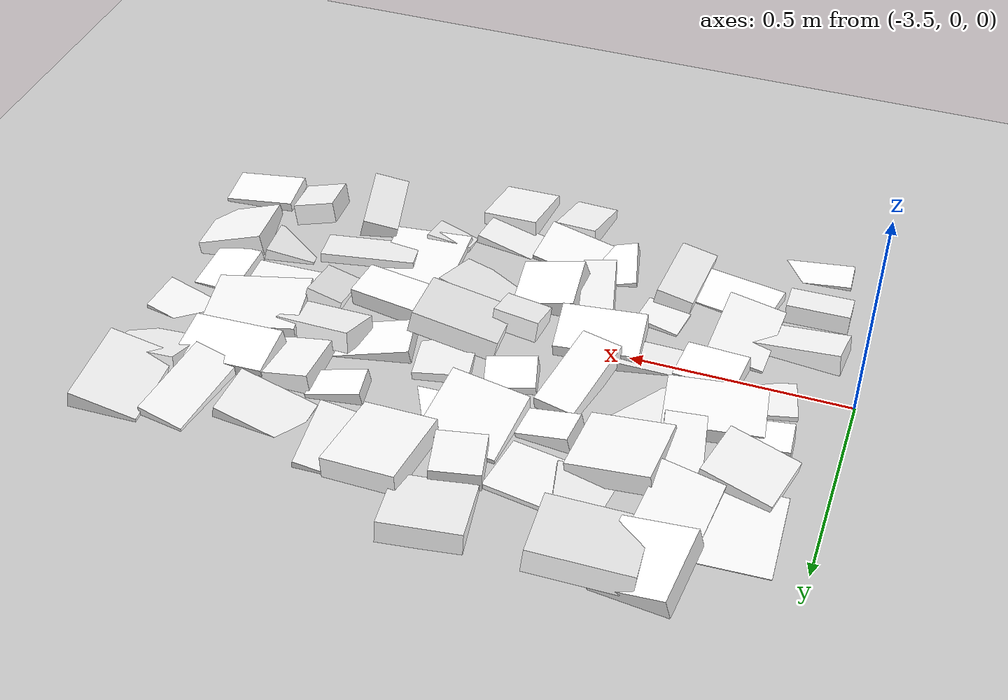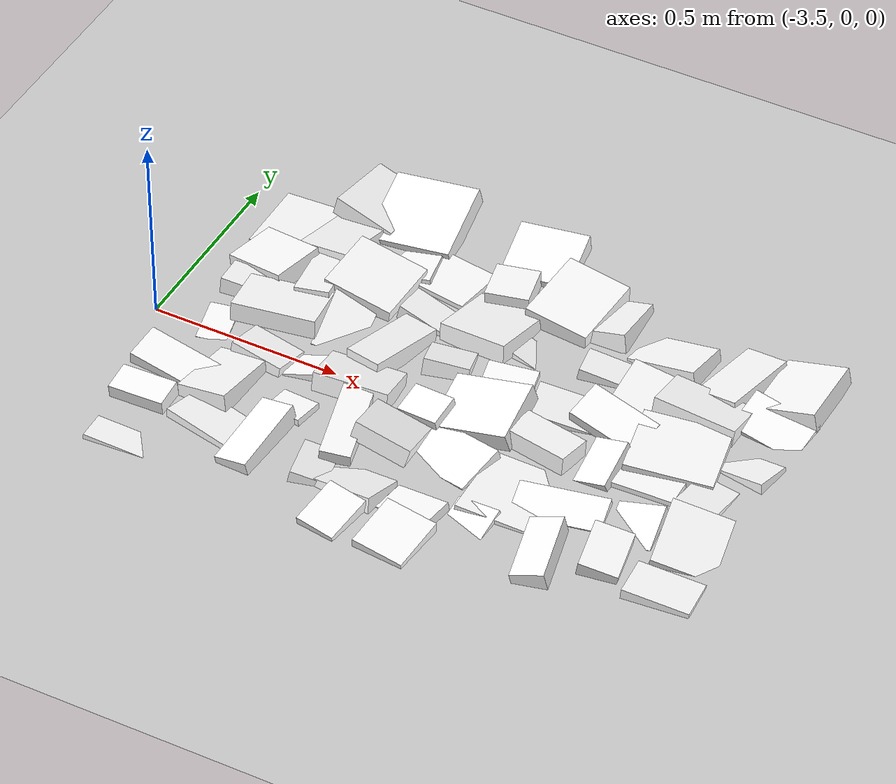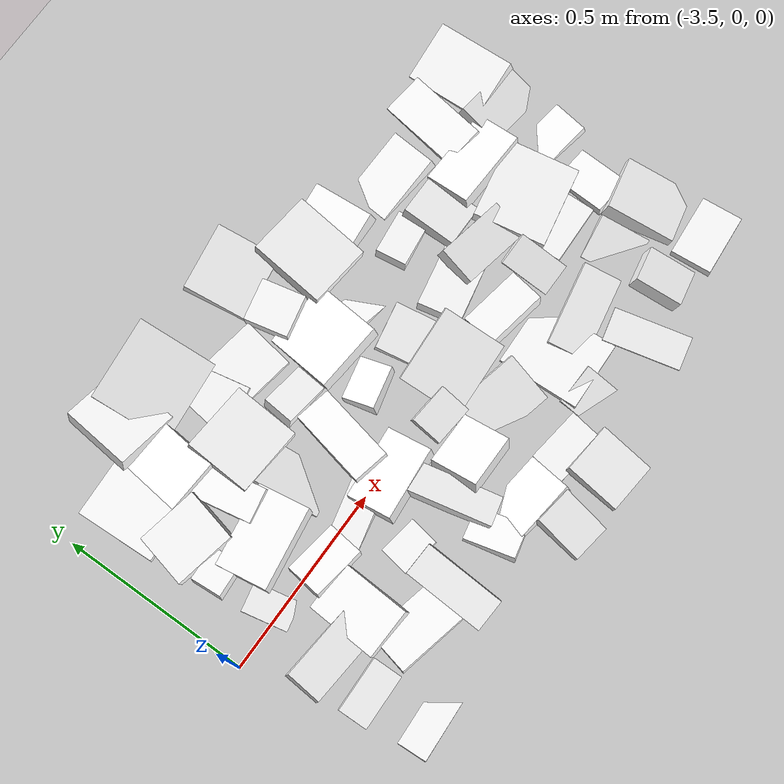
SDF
<sdf version="1.7">
 <world name="default">
  <include><uri>model://sun</uri></include>
  <include><uri>model://ground_plane</uri></include>
  <model name="static_environment">
   <static>true</static>
   <link name="region_125">
    <pose>-2.7450805066014703 0.5970030428289608 0.007936961248547307 -0.17419196022391947 0.016974017752795112 3.2902578594799046</pose>
    <collision name="region_125_collision">
     <geometry><box><size>0.1787872380026846 0.16993174513375917 0.05</size></box></geometry>
     <surface><friction><ode><mu>1.0</mu><mu2>1.0</mu2></ode></friction></surface>
    </collision>
    <visual name="region_125_visual">
     <geometry><box><size>0.1787872380026846 0.16993174513375917 0.05</size></box></geometry>
     <material><ambient>1.0 1.0 1.0 1.0</ambient><diffuse>1.0 1.0 1.0 1.0</diffuse></material>
    </visual>
   </link>
   <link name="region_127">
    <pose>-3.074279364121639 0.582110382729103 0.021026293206696932 -0.2405612050189324 0.07493299263441427 3.2245069481845783</pose>
    <collision name="region_127_collision">
     <geometry><box><size>0.22155990457814648 0.2110941735947492 0.05</size></box></geometry>
     <surface><friction><ode><mu>1.0</mu><mu2>1.0</mu2></ode></friction></surface>
    </collision>
    <visual name="region_127_visual">
     <geometry><box><size>0.22155990457814648 0.2110941735947492 0.05</size></box></geometry>
     <material><ambient>1.0 1.0 1.0 1.0</ambient><diffuse>1.0 1.0 1.0 1.0</diffuse></material>
    </visual>
   </link>
   <link name="region_128">
    <pose>-3.1947381954442773 0.5901361474293554 0.011953698729334043 0.09498438012934918 -0.2211343357453654 3.0196516848383186</pose>
    <collision name="region_128_collision">
     <geometry><box><size>0.16613577178932437 0.18793919129499198 0.05</size></box></geometry>
     <surface><friction><ode><mu>1.0</mu><mu2>1.0</mu2></ode></friction></surface>
    </collision>
    <visual name="region_128_visual">
     <geometry><box><size>0.16613577178932437 0.18793919129499198 0.05</size></box></geometry>
     <material><ambient>1.0 1.0 1.0 1.0</ambient><diffuse>1.0 1.0 1.0 1.0</diffuse></material>
    </visual>
   </link>
   <link name="region_140">
    <pose>-1.977554527062493 0.44654129015868715 0.008197541328173172 0.0782525190440791 0.2219908501742885 3.182647477624625</pose>
    <collision name="region_140_collision">
     <geometry><box><size>0.15912056584782244 0.20657173481870045 0.05</size></box></geometry>
     <surface><friction><ode><mu>1.0</mu><mu2>1.0</mu2></ode></friction></surface>
    </collision>
    <visual name="region_140_visual">
     <geometry><box><size>0.15912056584782244 0.20657173481870045 0.05</size></box></geometry>
     <material><ambient>1.0 1.0 1.0 1.0</ambient><diffuse>1.0 1.0 1.0 1.0</diffuse></material>
    </visual>
   </link>
   <link name="region_141">
    <pose>-2.126756254897216 0.4243954894508986 4.9218588760752136e-05 0.09862361094934724 0.1410521175741823 2.9893607152386563</pose>
    <collision name="region_141_collision">
     <geometry><box><size>0.11128267354355184 0.21727386595157264 0.05</size></box></geometry>
     <surface><friction><ode><mu>1.0</mu><mu2>1.0</mu2></ode></friction></surface>
    </collision>
    <visual name="region_141_visual">
     <geometry><box><size>0.11128267354355184 0.21727386595157264 0.05</size></box></geometry>
     <material><ambient>1.0 1.0 1.0 1.0</ambient><diffuse>1.0 1.0 1.0 1.0</diffuse></material>
    </visual>
   </link>
   <link name="region_142">
    <pose>-2.3066923933066175 0.42473631597748673 -0.0071861196831135565 0.1195137725190904 0.2167940511240608 3.0678516066331656</pose>
    <collision name="region_142_collision">
     <geometry><box><size>0.1873565274673096 0.12182042776783417 0.05</size></box></geometry>
     <surface><friction><ode><mu>1.0</mu><mu2>1.0</mu2></ode></friction></surface>
    </collision>
    <visual name="region_142_visual">
     <geometry><box><size>0.1873565274673096 0.12182042776783417 0.05</size></box></geometry>
     <material><ambient>1.0 1.0 1.0 1.0</ambient><diffuse>1.0 1.0 1.0 1.0</diffuse></material>
    </visual>
   </link>
   <link name="region_143">
    <pose>-2.4797391435352867 0.47445375798717376 -0.0005016795825624094 0.18506785968185613 0.19300738297912629 3.2047756692687903</pose>
    <collision name="region_143_collision">
     <geometry><box><size>0.10750885270128696 0.16651616020808907 0.05</size></box></geometry>
     <surface><friction><ode><mu>1.0</mu><mu2>1.0</mu2></ode></friction></surface>
    </collision>
    <visual name="region_143_visual">
     <geometry><box><size>0.10750885270128696 0.16651616020808907 0.05</size></box></geometry>
     <material><ambient>1.0 1.0 1.0 1.0</ambient><diffuse>1.0 1.0 1.0 1.0</diffuse></material>
    </visual>
   </link>
   <link name="region_144">
    <pose>-2.5923904133879905 0.4708563151062957 0.0246079806252648 -0.07311969972214782 -0.0875729615630787 3.056457538661293</pose>
    <collision name="region_144_collision">
     <geometry><box><size>0.17155182428870538 0.20281812778706174 0.05</size></box></geometry>
     <surface><friction><ode><mu>1.0</mu><mu2>1.0</mu2></ode></friction></surface>
    </collision>
    <visual name="region_144_visual">
     <geometry><box><size>0.17155182428870538 0.20281812778706174 0.05</size></box></geometry>
     <material><ambient>1.0 1.0 1.0 1.0</ambient><diffuse>1.0 1.0 1.0 1.0</diffuse></material>
    </visual>
   </link>
   <link name="region_145">
    <pose>-2.758083239749354 0.4490404530701476 0.021144752501435597 0.0355235897543576 0.012708381295239102 3.3543667856906594</pose>
    <collision name="region_145_collision">
     <geometry><box><size>0.11167313632987634 0.11646361485092716 0.05</size></box></geometry>
     <surface><friction><ode><mu>1.0</mu><mu2>1.0</mu2></ode></friction></surface>
    </collision>
    <visual name="region_145_visual">
     <geometry><box><size>0.11167313632987634 0.11646361485092716 0.05</size></box></geometry>
     <material><ambient>1.0 1.0 1.0 1.0</ambient><diffuse>1.0 1.0 1.0 1.0</diffuse></material>
    </visual>
   </link>
   <link name="region_146">
    <pose>-2.9132910932410088 0.429095376063361 -0.014107610328486266 0.006784271642801154 0.006025194472600748 2.983012271385779</pose>
    <collision name="region_146_collision">
     <geometry><box><size>0.16446557801859527 0.14272536299121175 0.05</size></box></geometry>
     <surface><friction><ode><mu>1.0</mu><mu2>1.0</mu2></ode></friction></surface>
    </collision>
    <visual name="region_146_visual">
     <geometry><box><size>0.16446557801859527 0.14272536299121175 0.05</size></box></geometry>
     <material><ambient>1.0 1.0 1.0 1.0</ambient><diffuse>1.0 1.0 1.0 1.0</diffuse></material>
    </visual>
   </link>
   <link name="region_147">
    <pose>-3.02983836197062 0.4666969602887719 -0.01904519936383796 0.06504248751070002 0.18845013867110239 3.3438110455227488</pose>
    <collision name="region_147_collision">
     <geometry><box><size>0.13307413932261364 0.19986395768187556 0.05</size></box></geometry>
     <surface><friction><ode><mu>1.0</mu><mu2>1.0</mu2></ode></friction></surface>
    </collision>
    <visual name="region_147_visual">
     <geometry><box><size>0.13307413932261364 0.19986395768187556 0.05</size></box></geometry>
     <material><ambient>1.0 1.0 1.0 1.0</ambient><diffuse>1.0 1.0 1.0 1.0</diffuse></material>
    </visual>
   </link>
   <link name="region_148">
    <pose>-3.2128582750516324 0.43829430901701005 0.00259493737990461 0.1878498009879035 0.14357269516973675 3.053334509353942</pose>
    <collision name="region_148_collision">
     <geometry><box><size>0.14092712411985148 0.2043946631770028 0.05</size></box></geometry>
     <surface><friction><ode><mu>1.0</mu><mu2>1.0</mu2></ode></friction></surface>
    </collision>
    <visual name="region_148_visual">
     <geometry><box><size>0.14092712411985148 0.2043946631770028 0.05</size></box></geometry>
     <material><ambient>1.0 1.0 1.0 1.0</ambient><diffuse>1.0 1.0 1.0 1.0</diffuse></material>
    </visual>
   </link>
   <link name="region_149">
    <pose>-3.351406051432328 0.42913865702626164 -0.018198315720773146 0.06569982079071063 -0.00118522118580916 3.1871142628320768</pose>
    <collision name="region_149_collision">
     <geometry><box><size>0.15432472128174257 0.2133753842760531 0.05</size></box></geometry>
     <surface><friction><ode><mu>1.0</mu><mu2>1.0</mu2></ode></friction></surface>
    </collision>
    <visual name="region_149_visual">
     <geometry><box><size>0.15432472128174257 0.2133753842760531 0.05</size></box></geometry>
     <material><ambient>1.0 1.0 1.0 1.0</ambient><diffuse>1.0 1.0 1.0 1.0</diffuse></material>
    </visual>
   </link>
   <link name="region_160">
    <pose>-1.989980733730303 0.3202628769462638 -0.007050060379597545 -0.24645662454059564 -0.1492669802642519 3.05614232002102</pose>
    <collision name="region_160_collision">
     <geometry><box><size>0.17738690893603393 0.11780525247197708 0.05</size></box></geometry>
     <surface><friction><ode><mu>1.0</mu><mu2>1.0</mu2></ode></friction></surface>
    </collision>
    <visual name="region_160_visual">
     <geometry><box><size>0.17738690893603393 0.11780525247197708 0.05</size></box></geometry>
     <material><ambient>1.0 1.0 1.0 1.0</ambient><diffuse>1.0 1.0 1.0 1.0</diffuse></material>
    </visual>
   </link>
   <link name="region_161">
    <pose>-2.158029919694631 0.28121571303227094 0.014106737472372406 0.17669890894893364 -0.06341066816809077 3.113286618236681</pose>
    <collision name="region_161_collision">
     <geometry><box><size>0.21529562221032936 0.12020713081095363 0.05</size></box></geometry>
     <surface><friction><ode><mu>1.0</mu><mu2>1.0</mu2></ode></friction></surface>
    </collision>
    <visual name="region_161_visual">
     <geometry><box><size>0.21529562221032936 0.12020713081095363 0.05</size></box></geometry>
     <material><ambient>1.0 1.0 1.0 1.0</ambient><diffuse>1.0 1.0 1.0 1.0</diffuse></material>
    </visual>
   </link>
   <link name="region_162">
    <pose>-2.3135385694385397 0.2726072839015603 0.00432264221515068 -0.10872310491003084 -0.16241050658796635 3.171038680385558</pose>
    <collision name="region_162_collision">
     <geometry><box><size>0.11971639446762072 0.14452383582103218 0.05</size></box></geometry>
     <surface><friction><ode><mu>1.0</mu><mu2>1.0</mu2></ode></friction></surface>
    </collision>
    <visual name="region_162_visual">
     <geometry><box><size>0.11971639446762072 0.14452383582103218 0.05</size></box></geometry>
     <material><ambient>1.0 1.0 1.0 1.0</ambient><diffuse>1.0 1.0 1.0 1.0</diffuse></material>
    </visual>
   </link>
   <link name="region_163">
    <pose>-2.429137725359212 0.3071355729197987 -0.005852534895555806 0.00885008480408167 -0.18536123305020663 3.287282680959551</pose>
    <collision name="region_163_collision">
     <geometry><box><size>0.12504145602461889 0.08160128611318312 0.05</size></box></geometry>
     <surface><friction><ode><mu>1.0</mu><mu2>1.0</mu2></ode></friction></surface>
    </collision>
    <visual name="region_163_visual">
     <geometry><box><size>0.12504145602461889 0.08160128611318312 0.05</size></box></geometry>
     <material><ambient>1.0 1.0 1.0 1.0</ambient><diffuse>1.0 1.0 1.0 1.0</diffuse></material>
    </visual>
   </link>
   <link name="region_164">
    <pose>-2.6235522980317394 0.28557116445511727 -0.024354282278486142 0.1490270257808678 -0.20587495526984667 2.9670029609816293</pose>
    <collision name="region_164_collision">
     <geometry><box><size>0.11654885732882905 0.08407692260042217 0.05</size></box></geometry>
     <surface><friction><ode><mu>1.0</mu><mu2>1.0</mu2></ode></friction></surface>
    </collision>
    <visual name="region_164_visual">
     <geometry><box><size>0.11654885732882905 0.08407692260042217 0.05</size></box></geometry>
     <material><ambient>1.0 1.0 1.0 1.0</ambient><diffuse>1.0 1.0 1.0 1.0</diffuse></material>
    </visual>
   </link>
   <link name="region_165">
    <pose>-2.741958834615202 0.3125943626702169 0.009239051161982245 0.18206268454672336 0.0822056442808955 3.0437090313672606</pose>
    <collision name="region_165_collision">
     <geometry><box><size>0.18313343105108731 0.18120486192448076 0.05</size></box></geometry>
     <surface><friction><ode><mu>1.0</mu><mu2>1.0</mu2></ode></friction></surface>
    </collision>
    <visual name="region_165_visual">
     <geometry><box><size>0.18313343105108731 0.18120486192448076 0.05</size></box></geometry>
     <material><ambient>1.0 1.0 1.0 1.0</ambient><diffuse>1.0 1.0 1.0 1.0</diffuse></material>
    </visual>
   </link>
   <link name="region_166">
    <pose>-2.9051775265179804 0.2853728156736461 -0.0002655537497958764 0.022126066735518535 -0.2375696023240681 3.0468278027703275</pose>
    <collision name="region_166_collision">
     <geometry><box><size>0.12228054918479558 0.08260138469513424 0.05</size></box></geometry>
     <surface><friction><ode><mu>1.0</mu><mu2>1.0</mu2></ode></friction></surface>
    </collision>
    <visual name="region_166_visual">
     <geometry><box><size>0.12228054918479558 0.08260138469513424 0.05</size></box></geometry>
     <material><ambient>1.0 1.0 1.0 1.0</ambient><diffuse>1.0 1.0 1.0 1.0</diffuse></material>
    </visual>
   </link>
   <link name="region_167">
    <pose>-3.0686423028335783 0.3185991884106128 0.022778344708693096 -0.05831778260220705 -0.1527083785163787 3.0974322092054405</pose>
    <collision name="region_167_collision">
     <geometry><box><size>0.18710878250868135 0.17564816586291176 0.05</size></box></geometry>
     <surface><friction><ode><mu>1.0</mu><mu2>1.0</mu2></ode></friction></surface>
    </collision>
    <visual name="region_167_visual">
     <geometry><box><size>0.18710878250868135 0.17564816586291176 0.05</size></box></geometry>
     <material><ambient>1.0 1.0 1.0 1.0</ambient><diffuse>1.0 1.0 1.0 1.0</diffuse></material>
    </visual>
   </link>
   <link name="region_168">
    <pose>-3.189774431250422 0.2935210849755584 0.013283188452265657 0.1355822239599494 0.05921705157188084 3.324442475313525</pose>
    <collision name="region_168_collision">
     <geometry><box><size>0.09002754263251588 0.2241914198070922 0.05</size></box></geometry>
     <surface><friction><ode><mu>1.0</mu><mu2>1.0</mu2></ode></friction></surface>
    </collision>
    <visual name="region_168_visual">
     <geometry><box><size>0.09002754263251588 0.2241914198070922 0.05</size></box></geometry>
     <material><ambient>1.0 1.0 1.0 1.0</ambient><diffuse>1.0 1.0 1.0 1.0</diffuse></material>
    </visual>
   </link>
   <link name="region_169">
    <pose>-3.3288913365518122 0.28100530281232267 0.015421346544319724 0.02616927684513043 0.1440281311971532 2.9218535455873056</pose>
    <collision name="region_169_collision">
     <geometry><box><size>0.16461831801063612 0.14407062861919936 0.05</size></box></geometry>
     <surface><friction><ode><mu>1.0</mu><mu2>1.0</mu2></ode></friction></surface>
    </collision>
    <visual name="region_169_visual">
     <geometry><box><size>0.16461831801063612 0.14407062861919936 0.05</size></box></geometry>
     <material><ambient>1.0 1.0 1.0 1.0</ambient><diffuse>1.0 1.0 1.0 1.0</diffuse></material>
    </visual>
   </link>
   <link name="region_180">
    <pose>-1.9843846277812955 0.16082606523592652 -0.019490602017265254 0.1467077714178613 0.1625147209730744 2.9786054578040755</pose>
    <collision name="region_180_collision">
     <geometry><box><size>0.14988438791221353 0.09685233144976411 0.05</size></box></geometry>
     <surface><friction><ode><mu>1.0</mu><mu2>1.0</mu2></ode></friction></surface>
    </collision>
    <visual name="region_180_visual">
     <geometry><box><size>0.14988438791221353 0.09685233144976411 0.05</size></box></geometry>
     <material><ambient>1.0 1.0 1.0 1.0</ambient><diffuse>1.0 1.0 1.0 1.0</diffuse></material>
    </visual>
   </link>
   <link name="region_181">
    <pose>-2.1506486584106552 0.12588338322754006 0.002481381489566465 -0.0385578600382297 -0.0647032116662622 3.335872617991656</pose>
    <collision name="region_181_collision">
     <geometry><box><size>0.22128001811208883 0.19129539594553027 0.05</size></box></geometry>
     <surface><friction><ode><mu>1.0</mu><mu2>1.0</mu2></ode></friction></surface>
    </collision>
    <visual name="region_181_visual">
     <geometry><box><size>0.22128001811208883 0.19129539594553027 0.05</size></box></geometry>
     <material><ambient>1.0 1.0 1.0 1.0</ambient><diffuse>1.0 1.0 1.0 1.0</diffuse></material>
    </visual>
   </link>
   <link name="region_182">
    <pose>-2.324559393511831 0.14066329114765044 0.015025855210280076 -0.22017778255201315 -0.14591012480841614 2.9776042120570123</pose>
    <collision name="region_182_collision">
     <geometry><box><size>0.19051599948541342 0.10237562472478162 0.05</size></box></geometry>
     <surface><friction><ode><mu>1.0</mu><mu2>1.0</mu2></ode></friction></surface>
    </collision>
    <visual name="region_182_visual">
     <geometry><box><size>0.19051599948541342 0.10237562472478162 0.05</size></box></geometry>
     <material><ambient>1.0 1.0 1.0 1.0</ambient><diffuse>1.0 1.0 1.0 1.0</diffuse></material>
    </visual>
   </link>
   <link name="region_183">
    <pose>-2.450190187621763 0.13867275310308524 -0.010184513625325436 -0.015609239466161495 -0.18151698324835086 3.352393435273882</pose>
    <collision name="region_183_collision">
     <geometry><box><size>0.17441914561251268 0.11451447982364635 0.05</size></box></geometry>
     <surface><friction><ode><mu>1.0</mu><mu2>1.0</mu2></ode></friction></surface>
    </collision>
    <visual name="region_183_visual">
     <geometry><box><size>0.17441914561251268 0.11451447982364635 0.05</size></box></geometry>
     <material><ambient>1.0 1.0 1.0 1.0</ambient><diffuse>1.0 1.0 1.0 1.0</diffuse></material>
    </visual>
   </link>
   <link name="region_184">
    <pose>-2.6151268095248845 0.13747695087300577 -0.016979379646044113 -0.13772174683264793 -0.044711736757814924 3.3402227677368113</pose>
    <collision name="region_184_collision">
     <geometry><box><size>0.12715453265956467 0.1544727440471793 0.05</size></box></geometry>
     <surface><friction><ode><mu>1.0</mu><mu2>1.0</mu2></ode></friction></surface>
    </collision>
    <visual name="region_184_visual">
     <geometry><box><size>0.12715453265956467 0.1544727440471793 0.05</size></box></geometry>
     <material><ambient>1.0 1.0 1.0 1.0</ambient><diffuse>1.0 1.0 1.0 1.0</diffuse></material>
    </visual>
   </link>
   <link name="region_185">
    <pose>-2.7751051109559866 0.15466626929951455 0.0031156735647610186 0.22958429907304928 -0.09350274279784093 3.3669278233319275</pose>
    <collision name="region_185_collision">
     <geometry><box><size>0.11524414401918215 0.08545538111408923 0.05</size></box></geometry>
     <surface><friction><ode><mu>1.0</mu><mu2>1.0</mu2></ode></friction></surface>
    </collision>
    <visual name="region_185_visual">
     <geometry><box><size>0.11524414401918215 0.08545538111408923 0.05</size></box></geometry>
     <material><ambient>1.0 1.0 1.0 1.0</ambient><diffuse>1.0 1.0 1.0 1.0</diffuse></material>
    </visual>
   </link>
   <link name="region_186">
    <pose>-2.918223912747124 0.12648834184290475 0.020205681365423542 0.15127968239389078 0.02976128457810867 2.9283164711776144</pose>
    <collision name="region_186_collision">
     <geometry><box><size>0.09658302095518441 0.21747877452751407 0.05</size></box></geometry>
     <surface><friction><ode><mu>1.0</mu><mu2>1.0</mu2></ode></friction></surface>
    </collision>
    <visual name="region_186_visual">
     <geometry><box><size>0.09658302095518441 0.21747877452751407 0.05</size></box></geometry>
     <material><ambient>1.0 1.0 1.0 1.0</ambient><diffuse>1.0 1.0 1.0 1.0</diffuse></material>
    </visual>
   </link>
   <link name="region_187">
    <pose>-3.0710168221763308 0.17632134162272228 -0.013627740595100392 -0.24034881687793097 -0.2488361246988015 3.3265687456666595</pose>
    <collision name="region_187_collision">
     <geometry><box><size>0.11567577102510876 0.1964156399216283 0.05</size></box></geometry>
     <surface><friction><ode><mu>1.0</mu><mu2>1.0</mu2></ode></friction></surface>
    </collision>
    <visual name="region_187_visual">
     <geometry><box><size>0.11567577102510876 0.1964156399216283 0.05</size></box></geometry>
     <material><ambient>1.0 1.0 1.0 1.0</ambient><diffuse>1.0 1.0 1.0 1.0</diffuse></material>
    </visual>
   </link>
   <link name="region_188">
    <pose>-3.2227725300783234 0.13394558686758676 0.021314824524297914 0.1276474374725668 0.00630674946339399 3.2902692527882524</pose>
    <collision name="region_188_collision">
     <geometry><box><size>0.21753978937258397 0.13750344757772248 0.05</size></box></geometry>
     <surface><friction><ode><mu>1.0</mu><mu2>1.0</mu2></ode></friction></surface>
    </collision>
    <visual name="region_188_visual">
     <geometry><box><size>0.21753978937258397 0.13750344757772248 0.05</size></box></geometry>
     <material><ambient>1.0 1.0 1.0 1.0</ambient><diffuse>1.0 1.0 1.0 1.0</diffuse></material>
    </visual>
   </link>
   <link name="region_189">
    <pose>-3.353552267784887 0.17482966958461613 0.0105915874041667 0.0859678668780694 -0.07803683243032605 3.2114125578818697</pose>
    <collision name="region_189_collision">
     <geometry><box><size>0.09232715607775574 0.08180664449967569 0.05</size></box></geometry>
     <surface><friction><ode><mu>1.0</mu><mu2>1.0</mu2></ode></friction></surface>
    </collision>
    <visual name="region_189_visual">
     <geometry><box><size>0.09232715607775574 0.08180664449967569 0.05</size></box></geometry>
     <material><ambient>1.0 1.0 1.0 1.0</ambient><diffuse>1.0 1.0 1.0 1.0</diffuse></material>
    </visual>
   </link>
   <link name="region_200">
    <pose>-2.025442071590287 0.012044945199070942 -0.011107408867709218 0.13266582652416714 -0.07661377726013507 3.052888488489693</pose>
    <collision name="region_200_collision">
     <geometry><box><size>0.10599878084922024 0.1389672986428669 0.05</size></box></geometry>
     <surface><friction><ode><mu>1.0</mu><mu2>1.0</mu2></ode></friction></surface>
    </collision>
    <visual name="region_200_visual">
     <geometry><box><size>0.10599878084922024 0.1389672986428669 0.05</size></box></geometry>
     <material><ambient>1.0 1.0 1.0 1.0</ambient><diffuse>1.0 1.0 1.0 1.0</diffuse></material>
    </visual>
   </link>
   <link name="region_201">
    <pose>-2.1651522751335888 0.0060181231729252 -0.013108455102817503 0.01163427743911466 0.0003626763371940567 3.170829688105105</pose>
    <collision name="region_201_collision">
     <geometry><box><size>0.1587530456430914 0.08647116402269943 0.05</size></box></geometry>
     <surface><friction><ode><mu>1.0</mu><mu2>1.0</mu2></ode></friction></surface>
    </collision>
    <visual name="region_201_visual">
     <geometry><box><size>0.1587530456430914 0.08647116402269943 0.05</size></box></geometry>
     <material><ambient>1.0 1.0 1.0 1.0</ambient><diffuse>1.0 1.0 1.0 1.0</diffuse></material>
    </visual>
   </link>
   <link name="region_202">
    <pose>-2.2856470056292917 0.008013600338988788 -3.266800663908123e-05 -0.23788961958568355 0.23706101029361798 3.114593671623979</pose>
    <collision name="region_202_collision">
     <geometry><box><size>0.086723894463434 0.1339021619477204 0.05</size></box></geometry>
     <surface><friction><ode><mu>1.0</mu><mu2>1.0</mu2></ode></friction></surface>
    </collision>
    <visual name="region_202_visual">
     <geometry><box><size>0.086723894463434 0.1339021619477204 0.05</size></box></geometry>
     <material><ambient>1.0 1.0 1.0 1.0</ambient><diffuse>1.0 1.0 1.0 1.0</diffuse></material>
    </visual>
   </link>
   <link name="region_203">
    <pose>-2.43540627547129 -0.0025469111514514085 0.02412402909399399 0.09038301964085677 -0.01752523511364318 2.9723008078776556</pose>
    <collision name="region_203_collision">
     <geometry><box><size>0.16918472586889083 0.0926132143927425 0.05</size></box></geometry>
     <surface><friction><ode><mu>1.0</mu><mu2>1.0</mu2></ode></friction></surface>
    </collision>
    <visual name="region_203_visual">
     <geometry><box><size>0.16918472586889083 0.0926132143927425 0.05</size></box></geometry>
     <material><ambient>1.0 1.0 1.0 1.0</ambient><diffuse>1.0 1.0 1.0 1.0</diffuse></material>
    </visual>
   </link>
   <link name="region_204">
    <pose>-2.6129074280399203 0.023852415837157595 0.024712465478148718 -0.17374251782879535 0.2014244224064407 3.1758658411649905</pose>
    <collision name="region_204_collision">
     <geometry><box><size>0.2029740576088566 0.16855377845805458 0.05</size></box></geometry>
     <surface><friction><ode><mu>1.0</mu><mu2>1.0</mu2></ode></friction></surface>
    </collision>
    <visual name="region_204_visual">
     <geometry><box><size>0.2029740576088566 0.16855377845805458 0.05</size></box></geometry>
     <material><ambient>1.0 1.0 1.0 1.0</ambient><diffuse>1.0 1.0 1.0 1.0</diffuse></material>
    </visual>
   </link>
   <link name="region_205">
    <pose>-2.736346771900701 -0.029190502256539113 0.020808689834039343 -0.19591417069870531 0.05577122309593435 3.0461326084925973</pose>
    <collision name="region_205_collision">
     <geometry><box><size>0.10829800709782718 0.0844096225556626 0.05</size></box></geometry>
     <surface><friction><ode><mu>1.0</mu><mu2>1.0</mu2></ode></friction></surface>
    </collision>
    <visual name="region_205_visual">
     <geometry><box><size>0.10829800709782718 0.0844096225556626 0.05</size></box></geometry>
     <material><ambient>1.0 1.0 1.0 1.0</ambient><diffuse>1.0 1.0 1.0 1.0</diffuse></material>
    </visual>
   </link>
   <link name="region_206">
    <pose>-2.9251760236881723 -0.02084484731665032 0.024246038738622258 0.23719233984005755 -0.02905221224952148 3.2325688729003446</pose>
    <collision name="region_206_collision">
     <geometry><box><size>0.1937139663212808 0.12107750887369216 0.05</size></box></geometry>
     <surface><friction><ode><mu>1.0</mu><mu2>1.0</mu2></ode></friction></surface>
    </collision>
    <visual name="region_206_visual">
     <geometry><box><size>0.1937139663212808 0.12107750887369216 0.05</size></box></geometry>
     <material><ambient>1.0 1.0 1.0 1.0</ambient><diffuse>1.0 1.0 1.0 1.0</diffuse></material>
    </visual>
   </link>
   <link name="region_207">
    <pose>-3.030476281406737 -0.0038686729955771906 -0.009078534497218346 0.095740891409206 0.19202154855508013 3.3565018657213086</pose>
    <collision name="region_207_collision">
     <geometry><box><size>0.17749332622786237 0.08345738807720982 0.05</size></box></geometry>
     <surface><friction><ode><mu>1.0</mu><mu2>1.0</mu2></ode></friction></surface>
    </collision>
    <visual name="region_207_visual">
     <geometry><box><size>0.17749332622786237 0.08345738807720982 0.05</size></box></geometry>
     <material><ambient>1.0 1.0 1.0 1.0</ambient><diffuse>1.0 1.0 1.0 1.0</diffuse></material>
    </visual>
   </link>
   <link name="region_208">
    <pose>-3.1825866394454865 -0.015546281187324327 -0.0028169334262438672 0.15995687303231632 -0.07999695536176094 3.0044824584271512</pose>
    <collision name="region_208_collision">
     <geometry><box><size>0.14453122709304111 0.09867787945108614 0.05</size></box></geometry>
     <surface><friction><ode><mu>1.0</mu><mu2>1.0</mu2></ode></friction></surface>
    </collision>
    <visual name="region_208_visual">
     <geometry><box><size>0.14453122709304111 0.09867787945108614 0.05</size></box></geometry>
     <material><ambient>1.0 1.0 1.0 1.0</ambient><diffuse>1.0 1.0 1.0 1.0</diffuse></material>
    </visual>
   </link>
   <link name="region_209">
    <pose>-3.343404840018697 0.028779205004344954 -0.02146017076788343 -0.09171750222686942 -0.023258259265477255 3.352813922432786</pose>
    <collision name="region_209_collision">
     <geometry><box><size>0.0765642604869572 0.11956382684275133 0.05</size></box></geometry>
     <surface><friction><ode><mu>1.0</mu><mu2>1.0</mu2></ode></friction></surface>
    </collision>
    <visual name="region_209_visual">
     <geometry><box><size>0.0765642604869572 0.11956382684275133 0.05</size></box></geometry>
     <material><ambient>1.0 1.0 1.0 1.0</ambient><diffuse>1.0 1.0 1.0 1.0</diffuse></material>
    </visual>
   </link>
   <link name="region_220">
    <pose>-1.9887336376633342 -0.13165973865166292 -0.00042420953070883977 -0.20285144156616775 -0.2262240045344608 3.3524092558964607</pose>
    <collision name="region_220_collision">
     <geometry><box><size>0.15476320865238188 0.1823013249027158 0.05</size></box></geometry>
     <surface><friction><ode><mu>1.0</mu><mu2>1.0</mu2></ode></friction></surface>
    </collision>
    <visual name="region_220_visual">
     <geometry><box><size>0.15476320865238188 0.1823013249027158 0.05</size></box></geometry>
     <material><ambient>1.0 1.0 1.0 1.0</ambient><diffuse>1.0 1.0 1.0 1.0</diffuse></material>
    </visual>
   </link>
   <link name="region_221">
    <pose>-2.1294922375944467 -0.12847177068106752 -0.022807452223749598 -0.18899068400277869 0.18380191517815553 3.2721911941163437</pose>
    <collision name="region_221_collision">
     <geometry><box><size>0.1178927408255511 0.1327758492672925 0.05</size></box></geometry>
     <surface><friction><ode><mu>1.0</mu><mu2>1.0</mu2></ode></friction></surface>
    </collision>
    <visual name="region_221_visual">
     <geometry><box><size>0.1178927408255511 0.1327758492672925 0.05</size></box></geometry>
     <material><ambient>1.0 1.0 1.0 1.0</ambient><diffuse>1.0 1.0 1.0 1.0</diffuse></material>
    </visual>
   </link>
   <link name="region_222">
    <pose>-2.3131864473424044 -0.16064345199626529 -0.015097400490389518 -0.17959094850071972 0.009426253820625341 3.3261205155939924</pose>
    <collision name="region_222_collision">
     <geometry><box><size>0.22333464580819026 0.10087670916566246 0.05</size></box></geometry>
     <surface><friction><ode><mu>1.0</mu><mu2>1.0</mu2></ode></friction></surface>
    </collision>
    <visual name="region_222_visual">
     <geometry><box><size>0.22333464580819026 0.10087670916566246 0.05</size></box></geometry>
     <material><ambient>1.0 1.0 1.0 1.0</ambient><diffuse>1.0 1.0 1.0 1.0</diffuse></material>
    </visual>
   </link>
   <link name="region_223">
    <pose>-2.4399904534799166 -0.17216187516914244 -0.019725941922258735 0.04518145309298838 -0.06167250563846677 3.1795236711925483</pose>
    <collision name="region_223_collision">
     <geometry><box><size>0.18674985992699442 0.21653331803329728 0.05</size></box></geometry>
     <surface><friction><ode><mu>1.0</mu><mu2>1.0</mu2></ode></friction></surface>
    </collision>
    <visual name="region_223_visual">
     <geometry><box><size>0.18674985992699442 0.21653331803329728 0.05</size></box></geometry>
     <material><ambient>1.0 1.0 1.0 1.0</ambient><diffuse>1.0 1.0 1.0 1.0</diffuse></material>
    </visual>
   </link>
   <link name="region_224">
    <pose>-2.6296494021388197 -0.12104975533903001 -0.013654272556088743 -0.22921941343310626 0.0675936499980957 2.908011651903498</pose>
    <collision name="region_224_collision">
     <geometry><box><size>0.21236594375697418 0.13424560840203897 0.05</size></box></geometry>
     <surface><friction><ode><mu>1.0</mu><mu2>1.0</mu2></ode></friction></surface>
    </collision>
    <visual name="region_224_visual">
     <geometry><box><size>0.21236594375697418 0.13424560840203897 0.05</size></box></geometry>
     <material><ambient>1.0 1.0 1.0 1.0</ambient><diffuse>1.0 1.0 1.0 1.0</diffuse></material>
    </visual>
   </link>
   <link name="region_225">
    <pose>-2.7716520936407005 -0.14452476754943838 0.024975425216939497 0.23150983075776183 -0.2384701267287327 3.1564366238947397</pose>
    <collision name="region_225_collision">
     <geometry><box><size>0.14828915977501894 0.1256152336093527 0.05</size></box></geometry>
     <surface><friction><ode><mu>1.0</mu><mu2>1.0</mu2></ode></friction></surface>
    </collision>
    <visual name="region_225_visual">
     <geometry><box><size>0.14828915977501894 0.1256152336093527 0.05</size></box></geometry>
     <material><ambient>1.0 1.0 1.0 1.0</ambient><diffuse>1.0 1.0 1.0 1.0</diffuse></material>
    </visual>
   </link>
   <link name="region_226">
    <pose>-2.8766327143481005 -0.16751894871859566 0.020466167091587148 -0.11582847557283044 -0.06994923179833806 3.381871904092864</pose>
    <collision name="region_226_collision">
     <geometry><box><size>0.07717132412795666 0.22243913095050838 0.05</size></box></geometry>
     <surface><friction><ode><mu>1.0</mu><mu2>1.0</mu2></ode></friction></surface>
    </collision>
    <visual name="region_226_visual">
     <geometry><box><size>0.07717132412795666 0.22243913095050838 0.05</size></box></geometry>
     <material><ambient>1.0 1.0 1.0 1.0</ambient><diffuse>1.0 1.0 1.0 1.0</diffuse></material>
    </visual>
   </link>
   <link name="region_227">
    <pose>-3.0332317160962843 -0.1550558327901296 -0.015326343854364516 0.03573477229511368 0.10537960164643917 2.9848436629526063</pose>
    <collision name="region_227_collision">
     <geometry><box><size>0.10335498510022983 0.07912936034270254 0.05</size></box></geometry>
     <surface><friction><ode><mu>1.0</mu><mu2>1.0</mu2></ode></friction></surface>
    </collision>
    <visual name="region_227_visual">
     <geometry><box><size>0.10335498510022983 0.07912936034270254 0.05</size></box></geometry>
     <material><ambient>1.0 1.0 1.0 1.0</ambient><diffuse>1.0 1.0 1.0 1.0</diffuse></material>
    </visual>
   </link>
   <link name="region_228">
    <pose>-3.2253462797690644 -0.14791100493943374 0.002500590119832259 0.1356110483469991 0.15929310447262873 3.1013732164353143</pose>
    <collision name="region_228_collision">
     <geometry><box><size>0.13334763889579823 0.1891318839042098 0.05</size></box></geometry>
     <surface><friction><ode><mu>1.0</mu><mu2>1.0</mu2></ode></friction></surface>
    </collision>
    <visual name="region_228_visual">
     <geometry><box><size>0.13334763889579823 0.1891318839042098 0.05</size></box></geometry>
     <material><ambient>1.0 1.0 1.0 1.0</ambient><diffuse>1.0 1.0 1.0 1.0</diffuse></material>
    </visual>
   </link>
   <link name="region_229">
    <pose>-3.349342141685736 -0.15521522098258023 0.0018976716745423353 -0.15021741841432784 -0.1387005551535065 3.0661830642072445</pose>
    <collision name="region_229_collision">
     <geometry><box><size>0.2087821261390897 0.09527432023995436 0.05</size></box></geometry>
     <surface><friction><ode><mu>1.0</mu><mu2>1.0</mu2></ode></friction></surface>
    </collision>
    <visual name="region_229_visual">
     <geometry><box><size>0.2087821261390897 0.09527432023995436 0.05</size></box></geometry>
     <material><ambient>1.0 1.0 1.0 1.0</ambient><diffuse>1.0 1.0 1.0 1.0</diffuse></material>
    </visual>
   </link>
   <link name="region_240">
    <pose>-1.9780634782041566 -0.3002008365578077 -0.008726913174159318 0.036842342344880596 -0.08323889326391587 3.218836379941657</pose>
    <collision name="region_240_collision">
     <geometry><box><size>0.1683427792220995 0.10826772946513306 0.05</size></box></geometry>
     <surface><friction><ode><mu>1.0</mu><mu2>1.0</mu2></ode></friction></surface>
    </collision>
    <visual name="region_240_visual">
     <geometry><box><size>0.1683427792220995 0.10826772946513306 0.05</size></box></geometry>
     <material><ambient>1.0 1.0 1.0 1.0</ambient><diffuse>1.0 1.0 1.0 1.0</diffuse></material>
    </visual>
   </link>
   <link name="region_241">
    <pose>-2.13930794715864 -0.2727580246331351 0.024909975223696687 -0.2292336771712395 -0.18994083636864173 3.3271199348383114</pose>
    <collision name="region_241_collision">
     <geometry><box><size>0.09812847047565657 0.12685121061022625 0.05</size></box></geometry>
     <surface><friction><ode><mu>1.0</mu><mu2>1.0</mu2></ode></friction></surface>
    </collision>
    <visual name="region_241_visual">
     <geometry><box><size>0.09812847047565657 0.12685121061022625 0.05</size></box></geometry>
     <material><ambient>1.0 1.0 1.0 1.0</ambient><diffuse>1.0 1.0 1.0 1.0</diffuse></material>
    </visual>
   </link>
   <link name="region_242">
    <pose>-2.2825613903758963 -0.32739176778307144 0.007449339652342721 -0.003039795011237967 0.23032373334636874 3.3763384522408297</pose>
    <collision name="region_242_collision">
     <geometry><box><size>0.08515876372812148 0.20066687292897822 0.05</size></box></geometry>
     <surface><friction><ode><mu>1.0</mu><mu2>1.0</mu2></ode></friction></surface>
    </collision>
    <visual name="region_242_visual">
     <geometry><box><size>0.08515876372812148 0.20066687292897822 0.05</size></box></geometry>
     <material><ambient>1.0 1.0 1.0 1.0</ambient><diffuse>1.0 1.0 1.0 1.0</diffuse></material>
    </visual>
   </link>
   <link name="region_243">
    <pose>-2.479254554114863 -0.2927896636156116 -0.021103878915904557 -0.22424612089459717 0.07293676148431916 3.091204436265662</pose>
    <collision name="region_243_collision">
     <geometry><box><size>0.11067459371309829 0.10157407020688614 0.05</size></box></geometry>
     <surface><friction><ode><mu>1.0</mu><mu2>1.0</mu2></ode></friction></surface>
    </collision>
    <visual name="region_243_visual">
     <geometry><box><size>0.11067459371309829 0.10157407020688614 0.05</size></box></geometry>
     <material><ambient>1.0 1.0 1.0 1.0</ambient><diffuse>1.0 1.0 1.0 1.0</diffuse></material>
    </visual>
   </link>
   <link name="region_244">
    <pose>-2.6147607972657045 -0.32342186858580824 -0.014845576859056343 0.012806156578442585 0.15798803355348695 3.0007639385966174</pose>
    <collision name="region_244_collision">
     <geometry><box><size>0.14411451406173525 0.09307348839362574 0.05</size></box></geometry>
     <surface><friction><ode><mu>1.0</mu><mu2>1.0</mu2></ode></friction></surface>
    </collision>
    <visual name="region_244_visual">
     <geometry><box><size>0.14411451406173525 0.09307348839362574 0.05</size></box></geometry>
     <material><ambient>1.0 1.0 1.0 1.0</ambient><diffuse>1.0 1.0 1.0 1.0</diffuse></material>
    </visual>
   </link>
   <link name="region_245">
    <pose>-2.773090823310385 -0.31944878668165344 -0.010928865738543781 0.2427966067166903 0.13512546164591172 3.021169940517007</pose>
    <collision name="region_245_collision">
     <geometry><box><size>0.1651872669137714 0.1141411296268407 0.05</size></box></geometry>
     <surface><friction><ode><mu>1.0</mu><mu2>1.0</mu2></ode></friction></surface>
    </collision>
    <visual name="region_245_visual">
     <geometry><box><size>0.1651872669137714 0.1141411296268407 0.05</size></box></geometry>
     <material><ambient>1.0 1.0 1.0 1.0</ambient><diffuse>1.0 1.0 1.0 1.0</diffuse></material>
    </visual>
   </link>
   <link name="region_246">
    <pose>-2.8918204827063962 -0.3050288233934258 -0.01324866523049889 0.12339919459653786 -0.20544335097657573 3.3587062544758166</pose>
    <collision name="region_246_collision">
     <geometry><box><size>0.09001982028151964 0.13358799579513947 0.05</size></box></geometry>
     <surface><friction><ode><mu>1.0</mu><mu2>1.0</mu2></ode></friction></surface>
    </collision>
    <visual name="region_246_visual">
     <geometry><box><size>0.09001982028151964 0.13358799579513947 0.05</size></box></geometry>
     <material><ambient>1.0 1.0 1.0 1.0</ambient><diffuse>1.0 1.0 1.0 1.0</diffuse></material>
    </visual>
   </link>
   <link name="region_247">
    <pose>-3.0512556586811908 -0.2958375946352529 0.009221245703605531 -0.08794632622545062 0.16351725450456117 3.0881136800114524</pose>
    <collision name="region_247_collision">
     <geometry><box><size>0.08709115709806353 0.21614166682891814 0.05</size></box></geometry>
     <surface><friction><ode><mu>1.0</mu><mu2>1.0</mu2></ode></friction></surface>
    </collision>
    <visual name="region_247_visual">
     <geometry><box><size>0.08709115709806353 0.21614166682891814 0.05</size></box></geometry>
     <material><ambient>1.0 1.0 1.0 1.0</ambient><diffuse>1.0 1.0 1.0 1.0</diffuse></material>
    </visual>
   </link>
   <link name="region_248">
    <pose>-3.1771369572820434 -0.28181315225899833 -0.014213528849512592 0.11317626796271246 -0.04050861062842126 2.9214912189886117</pose>
    <collision name="region_248_collision">
     <geometry><box><size>0.19466537238057519 0.11813605146870075 0.05</size></box></geometry>
     <surface><friction><ode><mu>1.0</mu><mu2>1.0</mu2></ode></friction></surface>
    </collision>
    <visual name="region_248_visual">
     <geometry><box><size>0.19466537238057519 0.11813605146870075 0.05</size></box></geometry>
     <material><ambient>1.0 1.0 1.0 1.0</ambient><diffuse>1.0 1.0 1.0 1.0</diffuse></material>
    </visual>
   </link>
   <link name="region_249">
    <pose>-3.368118758650983 -0.2811205643323331 0.013962711543759283 -0.11137660495114554 0.006415821342074468 3.167336209355692</pose>
    <collision name="region_249_collision">
     <geometry><box><size>0.1448756599503218 0.07742169342774953 0.05</size></box></geometry>
     <surface><friction><ode><mu>1.0</mu><mu2>1.0</mu2></ode></friction></surface>
    </collision>
    <visual name="region_249_visual">
     <geometry><box><size>0.1448756599503218 0.07742169342774953 0.05</size></box></geometry>
     <material><ambient>1.0 1.0 1.0 1.0</ambient><diffuse>1.0 1.0 1.0 1.0</diffuse></material>
    </visual>
   </link>
   <link name="region_264">
    <pose>-2.6050002567032817 -0.43174896747529 0.0005997895180367696 -0.1171173845227817 -0.08456585321787402 3.0514303156223948</pose>
    <collision name="region_264_collision">
     <geometry><box><size>0.136256660732518 0.14735986445211582 0.05</size></box></geometry>
     <surface><friction><ode><mu>1.0</mu><mu2>1.0</mu2></ode></friction></surface>
    </collision>
    <visual name="region_264_visual">
     <geometry><box><size>0.136256660732518 0.14735986445211582 0.05</size></box></geometry>
     <material><ambient>1.0 1.0 1.0 1.0</ambient><diffuse>1.0 1.0 1.0 1.0</diffuse></material>
    </visual>
   </link>
   <link name="region_265">
    <pose>-2.769531009499931 -0.434675079589067 0.0019068239895893777 -0.1678461733137775 -0.08460996980515484 3.0000029998792894</pose>
    <collision name="region_265_collision">
     <geometry><box><size>0.10386604887862368 0.13109493573133418 0.05</size></box></geometry>
     <surface><friction><ode><mu>1.0</mu><mu2>1.0</mu2></ode></friction></surface>
    </collision>
    <visual name="region_265_visual">
     <geometry><box><size>0.10386604887862368 0.13109493573133418 0.05</size></box></geometry>
     <material><ambient>1.0 1.0 1.0 1.0</ambient><diffuse>1.0 1.0 1.0 1.0</diffuse></material>
    </visual>
   </link>
   <link name="region_269">
    <pose>-3.339453510818763 -0.43558712298280794 -0.02221632388582196 0.054436277996396665 -0.08666295139622104 3.1930559907786957</pose>
    <collision name="region_269_collision">
     <geometry><box><size>0.1650235019013615 0.07758229278361405 0.05</size></box></geometry>
     <surface><friction><ode><mu>1.0</mu><mu2>1.0</mu2></ode></friction></surface>
    </collision>
    <visual name="region_269_visual">
     <geometry><box><size>0.1650235019013615 0.07758229278361405 0.05</size></box></geometry>
     <material><ambient>1.0 1.0 1.0 1.0</ambient><diffuse>1.0 1.0 1.0 1.0</diffuse></material>
    </visual>
   </link>
  </model>
 </world>
</sdf>
